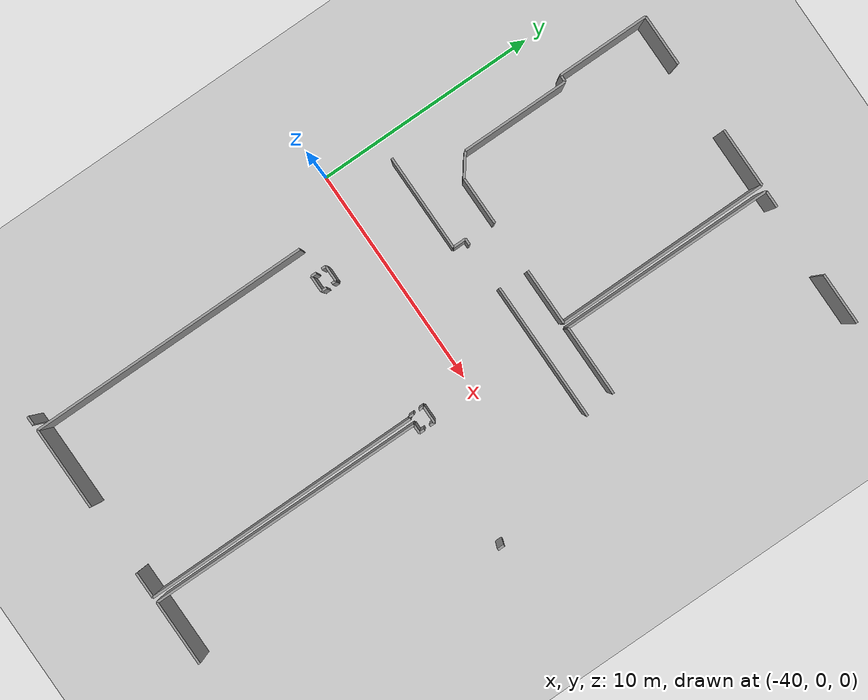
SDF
<sdf version="1.6">
 <world name="default">
  <model name="ground_plane">
   <static>1</static>
   <link name="link">
    <collision name="collision">
     <geometry><plane><normal>0 0 1</normal><size>100 100</size></plane></geometry>
     <surface><friction><ode><mu>100</mu><mu2>50</mu2></ode></friction></surface>
    </collision>
    <visual name="visual">
     <cast_shadows>0</cast_shadows>
     <geometry><plane><normal>0 0 1</normal><size>100 100</size></plane></geometry>
     <material>
      <script><uri>file://media/materials/scripts/gazebo.material</uri><name>Gazebo/Grey</name></script>
     </material>
    </visual>
   </link>
  </model>
  <model name="50056459">
   <static>1</static>
   <link name="Wall_13">
    <collision name="Wall_13_Collision">
     <geometry><box><size>6.18157486851 0.1 2.5</size></box></geometry>
     <pose>3.09078743425 0 1.25 0 0 0</pose>
    </collision>
    <visual name="Wall_13_Visual">
     <pose>3.09078743425 0 1.25 0 0 0</pose>
     <geometry><box><size>6.18157486851 0.1 2.5</size></box></geometry>
     <material>
      <script><uri>file://media/materials/scripts/gazebo.material</uri><name>Gazebo/Grey</name></script>
      <ambient>1 1 1 1</ambient>
     </material>
    </visual>
    <pose>29.0924305691 -11.9738792381 0 0 0 3.14159265359</pose>
   </link>
   <link name="Wall_14">
    <collision name="Wall_14_Collision">
     <geometry><box><size>0.278485944421 0.1 2.5</size></box></geometry>
     <pose>0.139242972211 0 1.25 0 0 0</pose>
    </collision>
    <visual name="Wall_14_Visual">
     <pose>0.139242972211 0 1.25 0 0 0</pose>
     <geometry><box><size>0.278485944421 0.1 2.5</size></box></geometry>
     <material>
      <script><uri>file://media/materials/scripts/gazebo.material</uri><name>Gazebo/Grey</name></script>
      <ambient>1 1 1 1</ambient>
     </material>
    </visual>
    <pose>20.8169598618 -11.9738792381 0 0 0 3.14159265359</pose>
   </link>
   <link name="Wall_15">
    <collision name="Wall_15_Collision">
     <geometry><box><size>0.587801841327 0.1 2.5</size></box></geometry>
     <pose>0.293900920664 0 1.25 0 0 0</pose>
    </collision>
    <visual name="Wall_15_Visual">
     <pose>0.293900920664 0 1.25 0 0 0</pose>
     <geometry><box><size>0.587801841327 0.1 2.5</size></box></geometry>
     <material>
      <script><uri>file://media/materials/scripts/gazebo.material</uri><name>Gazebo/Grey</name></script>
      <ambient>1 1 1 1</ambient>
     </material>
    </visual>
    <pose>20.5384739174 -11.9738792381 0 0 0 -1.57079632679</pose>
   </link>
   <link name="Wall_16">
    <collision name="Wall_16_Collision">
     <geometry><box><size>4.29925381351 0.1 2.5</size></box></geometry>
     <pose>2.14962690676 0 1.25 0 0 0</pose>
    </collision>
    <visual name="Wall_16_Visual">
     <pose>2.14962690676 0 1.25 0 0 0</pose>
     <geometry><box><size>4.29925381351 0.1 2.5</size></box></geometry>
     <material>
      <script><uri>file://media/materials/scripts/gazebo.material</uri><name>Gazebo/Grey</name></script>
      <ambient>1 1 1 1</ambient>
     </material>
    </visual>
    <pose>20.5384739174 -12.5616810794 0 0 0 3.14159265359</pose>
   </link>
   <link name="Wall_28">
    <collision name="Wall_28_Collision">
     <geometry><box><size>0.199547714433 0.1 2.5</size></box></geometry>
     <pose>0.0997738572167 0 1.25 0 0 0</pose>
    </collision>
    <visual name="Wall_28_Visual">
     <pose>0.0997738572167 0 1.25 0 0 0</pose>
     <geometry><box><size>0.199547714433 0.1 2.5</size></box></geometry>
     <material>
      <script><uri>file://media/materials/scripts/gazebo.material</uri><name>Gazebo/Grey</name></script>
      <ambient>1 1 1 1</ambient>
     </material>
    </visual>
    <pose>18.2707784563 -17.3584490162 0 0 0 1.57079632679</pose>
   </link>
   <link name="Wall_29">
    <collision name="Wall_29_Collision">
     <geometry><box><size>0.710274674549 0.1 2.5</size></box></geometry>
     <pose>0.355137337275 0 1.25 0 0 0</pose>
    </collision>
    <visual name="Wall_29_Visual">
     <pose>0.355137337275 0 1.25 0 0 0</pose>
     <geometry><box><size>0.710274674549 0.1 2.5</size></box></geometry>
     <material>
      <script><uri>file://media/materials/scripts/gazebo.material</uri><name>Gazebo/Grey</name></script>
      <ambient>1 1 1 1</ambient>
     </material>
    </visual>
    <pose>18.2707784563 -17.1589013018 0 0 0 0.0</pose>
   </link>
   <link name="Wall_30">
    <collision name="Wall_30_Collision">
     <geometry><box><size>0.197684365657 0.1 2.5</size></box></geometry>
     <pose>0.0988421828284 0 1.25 0 0 0</pose>
    </collision>
    <visual name="Wall_30_Visual">
     <pose>0.0988421828284 0 1.25 0 0 0</pose>
     <geometry><box><size>0.197684365657 0.1 2.5</size></box></geometry>
     <material>
      <script><uri>file://media/materials/scripts/gazebo.material</uri><name>Gazebo/Grey</name></script>
      <ambient>1 1 1 1</ambient>
     </material>
    </visual>
    <pose>18.9810531308 -17.1589013018 0 0 0 -1.57079632679</pose>
   </link>
   <link name="Wall_31">
    <collision name="Wall_31_Collision">
     <geometry><box><size>0.220552737005 0.1 2.5</size></box></geometry>
     <pose>0.110276368503 0 1.25 0 0 0</pose>
    </collision>
    <visual name="Wall_31_Visual">
     <pose>0.110276368503 0 1.25 0 0 0</pose>
     <geometry><box><size>0.220552737005 0.1 2.5</size></box></geometry>
     <material>
      <script><uri>file://media/materials/scripts/gazebo.material</uri><name>Gazebo/Grey</name></script>
      <ambient>1 1 1 1</ambient>
     </material>
    </visual>
    <pose>25.0794548858 -17.3565856675 0 0 0 1.57079632679</pose>
   </link>
   <link name="Wall_32">
    <collision name="Wall_32_Collision">
     <geometry><box><size>0.765158765786 0.1 2.5</size></box></geometry>
     <pose>0.382579382893 0 1.25 0 0 0</pose>
    </collision>
    <visual name="Wall_32_Visual">
     <pose>0.382579382893 0 1.25 0 0 0</pose>
     <geometry><box><size>0.765158765786 0.1 2.5</size></box></geometry>
     <material>
      <script><uri>file://media/materials/scripts/gazebo.material</uri><name>Gazebo/Grey</name></script>
      <ambient>1 1 1 1</ambient>
     </material>
    </visual>
    <pose>25.0794548858 -17.1360329305 0 0 0 0.0</pose>
   </link>
   <link name="Wall_33">
    <collision name="Wall_33_Collision">
     <geometry><box><size>0.222754876468 0.1 2.5</size></box></geometry>
     <pose>0.111377438234 0 1.25 0 0 0</pose>
    </collision>
    <visual name="Wall_33_Visual">
     <pose>0.111377438234 0 1.25 0 0 0</pose>
     <geometry><box><size>0.222754876468 0.1 2.5</size></box></geometry>
     <material>
      <script><uri>file://media/materials/scripts/gazebo.material</uri><name>Gazebo/Grey</name></script>
      <ambient>1 1 1 1</ambient>
     </material>
    </visual>
    <pose>25.8446136516 -17.1360329305 0 0 0 -1.57079632679</pose>
   </link>
   <link name="Wall_44">
    <collision name="Wall_44_Collision">
     <geometry><box><size>2.52822549908 0.1 2.5</size></box></geometry>
     <pose>1.26411274954 0 1.25 0 0 0</pose>
    </collision>
    <visual name="Wall_44_Visual">
     <pose>1.26411274954 0 1.25 0 0 0</pose>
     <geometry><box><size>2.52822549908 0.1 2.5</size></box></geometry>
     <material>
      <script><uri>file://media/materials/scripts/gazebo.material</uri><name>Gazebo/Grey</name></script>
      <ambient>1 1 1 1</ambient>
     </material>
    </visual>
    <pose>25.5171724529 -10.6571692344 0 0 0 3.14159265359</pose>
   </link>
   <link name="Wall_45">
    <collision name="Wall_45_Collision">
     <geometry><box><size>2.13793862807 0.1 2.5</size></box></geometry>
     <pose>1.06896931403 0 1.25 0 0 0</pose>
    </collision>
    <visual name="Wall_45_Visual">
     <pose>1.06896931403 0 1.25 0 0 0</pose>
     <geometry><box><size>2.13793862807 0.1 2.5</size></box></geometry>
     <material>
      <script><uri>file://media/materials/scripts/gazebo.material</uri><name>Gazebo/Grey</name></script>
      <ambient>1 1 1 1</ambient>
     </material>
    </visual>
    <pose>20.679919029 -10.6571692344 0 0 0 3.14159265359</pose>
   </link>
   <link name="Wall_46">
    <collision name="Wall_46_Collision">
     <geometry><box><size>1.11421485196 0.1 2.5</size></box></geometry>
     <pose>0.557107425978 0 1.25 0 0 0</pose>
    </collision>
    <visual name="Wall_46_Visual">
     <pose>0.557107425978 0 1.25 0 0 0</pose>
     <geometry><box><size>1.11421485196 0.1 2.5</size></box></geometry>
     <material>
      <script><uri>file://media/materials/scripts/gazebo.material</uri><name>Gazebo/Grey</name></script>
      <ambient>1 1 1 1</ambient>
     </material>
    </visual>
    <pose>18.541980401 -10.6571692344 0 0 0 2.49781788876</pose>
   </link>
   <link name="Wall_47">
    <collision name="Wall_47_Collision">
     <geometry><box><size>4.82624272659 0.1 2.5</size></box></geometry>
     <pose>2.41312136329 0 1.25 0 0 0</pose>
    </collision>
    <visual name="Wall_47_Visual">
     <pose>2.41312136329 0 1.25 0 0 0</pose>
     <geometry><box><size>4.82624272659 0.1 2.5</size></box></geometry>
     <material>
      <script><uri>file://media/materials/scripts/gazebo.material</uri><name>Gazebo/Grey</name></script>
      <ambient>1 1 1 1</ambient>
     </material>
    </visual>
    <pose>17.6507914997 -9.98839641898 0 0 0 1.57079632679</pose>
   </link>
   <link name="Wall_48">
    <collision name="Wall_48_Collision">
     <geometry><box><size>0.318124454759 0.1 2.5</size></box></geometry>
     <pose>0.159062227379 0 1.25 0 0 0</pose>
    </collision>
    <visual name="Wall_48_Visual">
     <pose>0.159062227379 0 1.25 0 0 0</pose>
     <geometry><box><size>0.318124454759 0.1 2.5</size></box></geometry>
     <material>
      <script><uri>file://media/materials/scripts/gazebo.material</uri><name>Gazebo/Grey</name></script>
      <ambient>1 1 1 1</ambient>
     </material>
    </visual>
    <pose>17.6507914997 -5.16215369239 0 0 0 3.14159265359</pose>
   </link>
   <link name="Wall_49">
    <collision name="Wall_49_Collision">
     <geometry><box><size>4.10123065717 0.1 2.5</size></box></geometry>
     <pose>2.05061532858 0 1.25 0 0 0</pose>
    </collision>
    <visual name="Wall_49_Visual">
     <pose>2.05061532858 0 1.25 0 0 0</pose>
     <geometry><box><size>4.10123065717 0.1 2.5</size></box></geometry>
     <material>
      <script><uri>file://media/materials/scripts/gazebo.material</uri><name>Gazebo/Grey</name></script>
      <ambient>1 1 1 1</ambient>
     </material>
    </visual>
    <pose>17.332667045 -5.16215369239 0 0 0 1.57079632679</pose>
   </link>
   <link name="Wall_50">
    <collision name="Wall_50_Collision">
     <geometry><box><size>2.29886420422 0.1 2.5</size></box></geometry>
     <pose>1.14943210211 0 1.25 0 0 0</pose>
    </collision>
    <visual name="Wall_50_Visual">
     <pose>1.14943210211 0 1.25 0 0 0</pose>
     <geometry><box><size>2.29886420422 0.1 2.5</size></box></geometry>
     <material>
      <script><uri>file://media/materials/scripts/gazebo.material</uri><name>Gazebo/Grey</name></script>
      <ambient>1 1 1 1</ambient>
     </material>
    </visual>
    <pose>17.332667045 -1.06092303523 0 0 0 0.0</pose>
   </link>
   <link name="Wall_51">
    <collision name="Wall_51_Collision">
     <geometry><box><size>2.66831544801 0.1 2.5</size></box></geometry>
     <pose>1.334157724 0 1.25 0 0 0</pose>
    </collision>
    <visual name="Wall_51_Visual">
     <pose>1.334157724 0 1.25 0 0 0</pose>
     <geometry><box><size>2.66831544801 0.1 2.5</size></box></geometry>
     <material>
      <script><uri>file://media/materials/scripts/gazebo.material</uri><name>Gazebo/Grey</name></script>
      <ambient>1 1 1 1</ambient>
     </material>
    </visual>
    <pose>22.8156555176 -1.06092303523 0 0 0 0.0</pose>
   </link>
   <link name="Wall_52">
    <collision name="Wall_52_Collision">
     <geometry><box><size>9.59630363496 0.1 2.5</size></box></geometry>
     <pose>4.79815181748 0 1.25 0 0 0</pose>
    </collision>
    <visual name="Wall_52_Visual">
     <pose>4.79815181748 0 1.25 0 0 0</pose>
     <geometry><box><size>9.59630363496 0.1 2.5</size></box></geometry>
     <material>
      <script><uri>file://media/materials/scripts/gazebo.material</uri><name>Gazebo/Grey</name></script>
      <ambient>1 1 1 1</ambient>
     </material>
    </visual>
    <pose>25.4839709656 -1.06092303523 0 0 0 -1.56733649947</pose>
   </link>
   <link name="Wall_54">
    <collision name="Wall_54_Collision">
     <geometry><box><size>3.16938687355 0.1 2.5</size></box></geometry>
     <pose>1.58469343678 0 1.25 0 0 0</pose>
    </collision>
    <visual name="Wall_54_Visual">
     <pose>1.58469343678 0 1.25 0 0 0</pose>
     <geometry><box><size>3.16938687355 0.1 2.5</size></box></geometry>
     <material>
      <script><uri>file://media/materials/scripts/gazebo.material</uri><name>Gazebo/Grey</name></script>
      <ambient>1 1 1 1</ambient>
     </material>
    </visual>
    <pose>28.9460729925 -10.6236289564 0 0 0 3.14159265359</pose>
   </link>
   <link name="Wall_55">
    <collision name="Wall_55_Collision">
     <geometry><box><size>9.56507745602 0.1 2.5</size></box></geometry>
     <pose>4.78253872801 0 1.25 0 0 0</pose>
    </collision>
    <visual name="Wall_55_Visual">
     <pose>4.78253872801 0 1.25 0 0 0</pose>
     <geometry><box><size>9.56507745602 0.1 2.5</size></box></geometry>
     <material>
      <script><uri>file://media/materials/scripts/gazebo.material</uri><name>Gazebo/Grey</name></script>
      <ambient>1 1 1 1</ambient>
     </material>
    </visual>
    <pose>25.7766861189 -10.6236289564 0 0 0 1.57079632679</pose>
   </link>
   <link name="Wall_56">
    <collision name="Wall_56_Collision">
     <geometry><box><size>0.765158765786 0.1 2.5</size></box></geometry>
     <pose>0.382579382893 0 1.25 0 0 0</pose>
    </collision>
    <visual name="Wall_56_Visual">
     <pose>0.382579382893 0 1.25 0 0 0</pose>
     <geometry><box><size>0.765158765786 0.1 2.5</size></box></geometry>
     <material>
      <script><uri>file://media/materials/scripts/gazebo.material</uri><name>Gazebo/Grey</name></script>
      <ambient>1 1 1 1</ambient>
     </material>
    </visual>
    <pose>25.7766861189 -1.05855150042 0 0 0 0.0</pose>
   </link>
   <link name="Wall_57">
    <collision name="Wall_57_Collision">
     <geometry><box><size>2.32884717999 0.1 2.5</size></box></geometry>
     <pose>1.16442359 0 1.25 0 0 0</pose>
    </collision>
    <visual name="Wall_57_Visual">
     <pose>1.16442359 0 1.25 0 0 0</pose>
     <geometry><box><size>2.32884717999 0.1 2.5</size></box></geometry>
     <material>
      <script><uri>file://media/materials/scripts/gazebo.material</uri><name>Gazebo/Grey</name></script>
      <ambient>1 1 1 1</ambient>
     </material>
    </visual>
    <pose>29.8050767784 -1.05855150042 0 0 0 0.0</pose>
   </link>
   <link name="Wall_93">
    <collision name="Wall_93_Collision">
     <geometry><box><size>2.97339646133 0.1 2.5</size></box></geometry>
     <pose>1.48669823067 0 1.25 0 0 0</pose>
    </collision>
    <visual name="Wall_93_Visual">
     <pose>1.48669823067 0 1.25 0 0 0</pose>
     <geometry><box><size>2.97339646133 0.1 2.5</size></box></geometry>
     <material>
      <script><uri>file://media/materials/scripts/gazebo.material</uri><name>Gazebo/Grey</name></script>
      <ambient>1 1 1 1</ambient>
     </material>
    </visual>
    <pose>28.4306029627 -30.271117247 0 0 0 3.14159265359</pose>
   </link>
   <link name="Wall_94">
    <collision name="Wall_94_Collision">
     <geometry><box><size>12.4092252704 0.1 2.5</size></box></geometry>
     <pose>6.2046126352 0 1.25 0 0 0</pose>
    </collision>
    <visual name="Wall_94_Visual">
     <pose>6.2046126352 0 1.25 0 0 0</pose>
     <geometry><box><size>12.4092252704 0.1 2.5</size></box></geometry>
     <material>
      <script><uri>file://media/materials/scripts/gazebo.material</uri><name>Gazebo/Grey</name></script>
      <ambient>1 1 1 1</ambient>
     </material>
    </visual>
    <pose>25.4572065014 -30.271117247 0 0 0 1.57079632679</pose>
   </link>
   <link name="Wall_95">
    <collision name="Wall_95_Collision">
     <geometry><box><size>0.393335987194 0.1 2.5</size></box></geometry>
     <pose>0.196667993597 0 1.25 0 0 0</pose>
    </collision>
    <visual name="Wall_95_Visual">
     <pose>0.196667993597 0 1.25 0 0 0</pose>
     <geometry><box><size>0.393335987194 0.1 2.5</size></box></geometry>
     <material>
      <script><uri>file://media/materials/scripts/gazebo.material</uri><name>Gazebo/Grey</name></script>
      <ambient>1 1 1 1</ambient>
     </material>
    </visual>
    <pose>25.4572065014 -17.8618919766 0 0 0 0.0</pose>
   </link>
   <link name="Wall_96">
    <collision name="Wall_96_Collision">
     <geometry><box><size>0.234273759814 0.1 2.5</size></box></geometry>
     <pose>0.117136879907 0 1.25 0 0 0</pose>
    </collision>
    <visual name="Wall_96_Visual">
     <pose>0.117136879907 0 1.25 0 0 0</pose>
     <geometry><box><size>0.234273759814 0.1 2.5</size></box></geometry>
     <material>
      <script><uri>file://media/materials/scripts/gazebo.material</uri><name>Gazebo/Grey</name></script>
      <ambient>1 1 1 1</ambient>
     </material>
    </visual>
    <pose>25.8505424886 -17.8618919766 0 0 0 1.57079632679</pose>
   </link>
   <link name="Wall_97">
    <collision name="Wall_97_Collision">
     <geometry><box><size>0.307452548129 0.1 2.5</size></box></geometry>
     <pose>0.153726274065 0 1.25 0 0 0</pose>
    </collision>
    <visual name="Wall_97_Visual">
     <pose>0.153726274065 0 1.25 0 0 0</pose>
     <geometry><box><size>0.307452548129 0.1 2.5</size></box></geometry>
     <material>
      <script><uri>file://media/materials/scripts/gazebo.material</uri><name>Gazebo/Grey</name></script>
      <ambient>1 1 1 1</ambient>
     </material>
    </visual>
    <pose>31.4309332836 -17.6276182168 0 0 0 -1.57079632679</pose>
   </link>
   <link name="Wall_102">
    <collision name="Wall_102_Collision">
     <geometry><box><size>1.17831400815 0.1 2.5</size></box></geometry>
     <pose>0.589157004074 0 1.25 0 0 0</pose>
    </collision>
    <visual name="Wall_102_Visual">
     <pose>0.589157004074 0 1.25 0 0 0</pose>
     <geometry><box><size>1.17831400815 0.1 2.5</size></box></geometry>
     <material>
      <script><uri>file://media/materials/scripts/gazebo.material</uri><name>Gazebo/Grey</name></script>
      <ambient>1 1 1 1</ambient>
     </material>
    </visual>
    <pose>25.2058238119 -30.2900895254 0 0 0 3.14159265359</pose>
   </link>
   <link name="Wall_103">
    <collision name="Wall_103_Collision">
     <geometry><box><size>3.71450108837 0.1 2.5</size></box></geometry>
     <pose>1.85725054418 0 1.25 0 0 0</pose>
    </collision>
    <visual name="Wall_103_Visual">
     <pose>1.85725054418 0 1.25 0 0 0</pose>
     <geometry><box><size>3.71450108837 0.1 2.5</size></box></geometry>
     <material>
      <script><uri>file://media/materials/scripts/gazebo.material</uri><name>Gazebo/Grey</name></script>
      <ambient>1 1 1 1</ambient>
     </material>
    </visual>
    <pose>20.8381342797 -30.2900895254 0 0 0 3.14159265359</pose>
   </link>
   <link name="Wall_104">
    <collision name="Wall_104_Collision">
     <geometry><box><size>12.6677225643 0.1 2.5</size></box></geometry>
     <pose>6.33386128215 0 1.25 0 0 0</pose>
    </collision>
    <visual name="Wall_104_Visual">
     <pose>6.33386128215 0 1.25 0 0 0</pose>
     <geometry><box><size>12.6677225643 0.1 2.5</size></box></geometry>
     <material>
      <script><uri>file://media/materials/scripts/gazebo.material</uri><name>Gazebo/Grey</name></script>
      <ambient>1 1 1 1</ambient>
     </material>
    </visual>
    <pose>17.1236331913 -30.2900895254 0 0 0 1.57079632679</pose>
   </link>
   <link name="Wall_105">
    <collision name="Wall_105_Collision">
     <geometry><box><size>0.240033201487 0.1 2.5</size></box></geometry>
     <pose>0.120016600744 0 1.25 0 0 0</pose>
    </collision>
    <visual name="Wall_105_Visual">
     <pose>0.120016600744 0 1.25 0 0 0</pose>
     <geometry><box><size>0.240033201487 0.1 2.5</size></box></geometry>
     <material>
      <script><uri>file://media/materials/scripts/gazebo.material</uri><name>Gazebo/Grey</name></script>
      <ambient>1 1 1 1</ambient>
     </material>
    </visual>
    <pose>18.2804339909 -17.6223669611 0 0 0 -1.57079632679</pose>
   </link>
   <link name="Wall_106">
    <collision name="Wall_106_Collision">
     <geometry><box><size>0.716711697595 0.1 2.5</size></box></geometry>
     <pose>0.358355848798 0 1.25 0 0 0</pose>
    </collision>
    <visual name="Wall_106_Visual">
     <pose>0.358355848798 0 1.25 0 0 0</pose>
     <geometry><box><size>0.716711697595 0.1 2.5</size></box></geometry>
     <material>
      <script><uri>file://media/materials/scripts/gazebo.material</uri><name>Gazebo/Grey</name></script>
      <ambient>1 1 1 1</ambient>
     </material>
    </visual>
    <pose>18.2804339909 -17.8624001626 0 0 0 0.0</pose>
   </link>
   <link name="Wall_107">
    <collision name="Wall_107_Collision">
     <geometry><box><size>0.242065945607 0.1 2.5</size></box></geometry>
     <pose>0.121032972804 0 1.25 0 0 0</pose>
    </collision>
    <visual name="Wall_107_Visual">
     <pose>0.121032972804 0 1.25 0 0 0</pose>
     <geometry><box><size>0.242065945607 0.1 2.5</size></box></geometry>
     <material>
      <script><uri>file://media/materials/scripts/gazebo.material</uri><name>Gazebo/Grey</name></script>
      <ambient>1 1 1 1</ambient>
     </material>
    </visual>
    <pose>18.9971456885 -17.8624001626 0 0 0 1.57079632679</pose>
   </link>
   <link name="Wall_108">
    <collision name="Wall_108_Collision">
     <geometry><box><size>0.218181202199 0.1 2.5</size></box></geometry>
     <pose>0.109090601099 0 1.25 0 0 0</pose>
    </collision>
    <visual name="Wall_108_Visual">
     <pose>0.109090601099 0 1.25 0 0 0</pose>
     <geometry><box><size>0.218181202199 0.1 2.5</size></box></geometry>
     <material>
      <script><uri>file://media/materials/scripts/gazebo.material</uri><name>Gazebo/Grey</name></script>
      <ambient>1 1 1 1</ambient>
     </material>
    </visual>
    <pose>25.0953780481 -17.620334217 0 0 0 -1.57079632679</pose>
   </link>
   <link name="Wall_109">
    <collision name="Wall_109_Collision">
     <geometry><box><size>0.084189485631 0.1 2.5</size></box></geometry>
     <pose>0.0420947428155 0 1.25 0 0 0</pose>
    </collision>
    <visual name="Wall_109_Visual">
     <pose>0.0420947428155 0 1.25 0 0 0</pose>
     <geometry><box><size>0.084189485631 0.1 2.5</size></box></geometry>
     <material>
      <script><uri>file://media/materials/scripts/gazebo.material</uri><name>Gazebo/Grey</name></script>
      <ambient>1 1 1 1</ambient>
     </material>
    </visual>
    <pose>25.0953780481 -17.8385154192 0 0 0 0.0</pose>
   </link>
   <link name="Wall_110">
    <collision name="Wall_110_Collision">
     <geometry><box><size>12.4516017891 0.1 2.5</size></box></geometry>
     <pose>6.22580089456 0 1.25 0 0 0</pose>
    </collision>
    <visual name="Wall_110_Visual">
     <pose>6.22580089456 0 1.25 0 0 0</pose>
     <geometry><box><size>12.4516017891 0.1 2.5</size></box></geometry>
     <material>
      <script><uri>file://media/materials/scripts/gazebo.material</uri><name>Gazebo/Grey</name></script>
      <ambient>1 1 1 1</ambient>
     </material>
    </visual>
    <pose>25.1795675337 -17.8385154192 0 0 0 -1.56868765852</pose>
   </link>
   <link name="Wall_111">
    <collision name="Wall_111_Collision">
     <geometry><box><size>0.412138870302 0.1 2.5</size></box></geometry>
     <pose>0.206069435151 0 1.25 0 0 0</pose>
    </collision>
    <visual name="Wall_111_Visual">
     <pose>0.206069435151 0 1.25 0 0 0</pose>
     <geometry><box><size>0.412138870302 0.1 2.5</size></box></geometry>
     <material>
      <script><uri>file://media/materials/scripts/gazebo.material</uri><name>Gazebo/Grey</name></script>
      <ambient>1 1 1 1</ambient>
     </material>
    </visual>
    <pose>16.862933758 -30.304657525 0 0 0 3.14159265359</pose>
   </link>
   <pose>-55.1 15.1656682223 0 0 0 0</pose>
  </model>
 </world>
</sdf>
